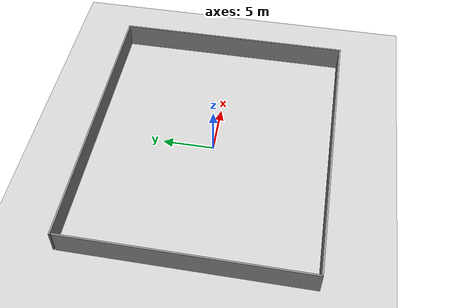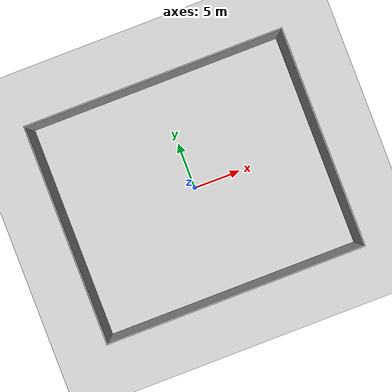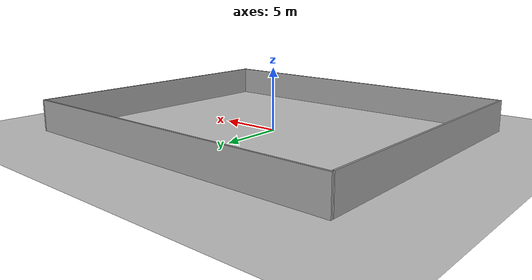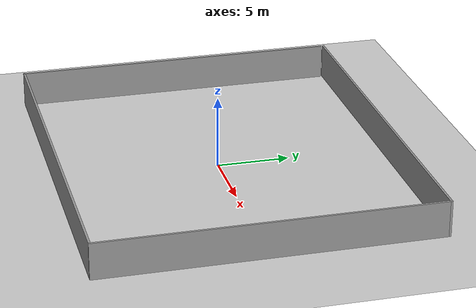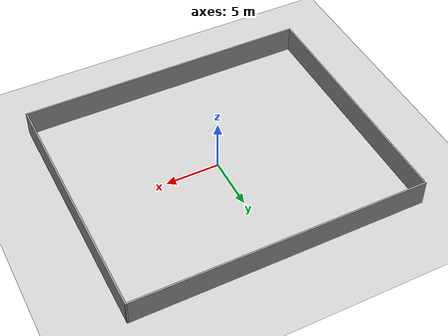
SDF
<sdf version="1.7">
 <world name="complete_pv_world">
  <include><uri>model://sun</uri></include>
  <include><uri>model://ground_plane</uri></include>
  <model name="with_wall">
   <pose>-0.005476 0.200665 0 0 -0 0</pose>
   <link name="Wall_16">
    <collision name="Wall_16_Collision">
     <geometry><box><size>23 0.15 2.5</size></box></geometry>
     <pose>0 0 1.25 0 -0 0</pose>
    </collision>
    <visual name="Wall_16_Visual">
     <pose>0 0 1.25 0 -0 0</pose>
     <geometry><box><size>23 0.15 2.5</size></box></geometry>
     <material>
      <script><uri>file://media/materials/scripts/gazebo.material</uri><name>Gazebo/Grey</name></script>
      <ambient>1 1 1 1</ambient>
     </material>
     <meta><layer>0</layer></meta>
    </visual>
    <pose>-13.675 -0.125 0 0 -0 -1.5708</pose>
   </link>
   <link name="Wall_18">
    <collision name="Wall_18_Collision">
     <geometry><box><size>27.5 0.15 2.5</size></box></geometry>
     <pose>0 0 1.25 0 -0 0</pose>
    </collision>
    <visual name="Wall_18_Visual">
     <pose>0 0 1.25 0 -0 0</pose>
     <geometry><box><size>27.5 0.15 2.5</size></box></geometry>
     <material>
      <script><uri>file://media/materials/scripts/gazebo.material</uri><name>Gazebo/Grey</name></script>
      <ambient>1 1 1 1</ambient>
     </material>
     <meta><layer>0</layer></meta>
    </visual>
    <pose>-0 -11.55 0 0 -0 0</pose>
   </link>
   <link name="Wall_19">
    <collision name="Wall_19_Collision">
     <geometry><box><size>23.25 0.15 2.5</size></box></geometry>
     <pose>0 0 1.25 0 -0 0</pose>
    </collision>
    <visual name="Wall_19_Visual">
     <pose>0 0 1.25 0 -0 0</pose>
     <geometry><box><size>23.25 0.15 2.5</size></box></geometry>
     <material>
      <script><uri>file://media/materials/scripts/gazebo.material</uri><name>Gazebo/Grey</name></script>
      <ambient>1 1 1 1</ambient>
     </material>
     <meta><layer>0</layer></meta>
    </visual>
    <pose>13.675 -0 0 0 -0 1.5708</pose>
   </link>
   <link name="Wall_20">
    <collision name="Wall_20_Collision">
     <geometry><box><size>27.5 0.15 2.5</size></box></geometry>
     <pose>0 0 1.25 0 -0 0</pose>
    </collision>
    <visual name="Wall_20_Visual">
     <pose>0 0 1.25 0 -0 0</pose>
     <geometry><box><size>27.5 0.15 2.5</size></box></geometry>
     <material>
      <script><uri>file://media/materials/scripts/gazebo.material</uri><name>Gazebo/Grey</name></script>
      <ambient>1 1 1 1</ambient>
     </material>
     <meta><layer>0</layer></meta>
    </visual>
    <pose>-0 11.55 0 0 -0 3.14159</pose>
   </link>
   <static>1</static>
  </model>
  <model name="environment"/>
 </world>
</sdf>
